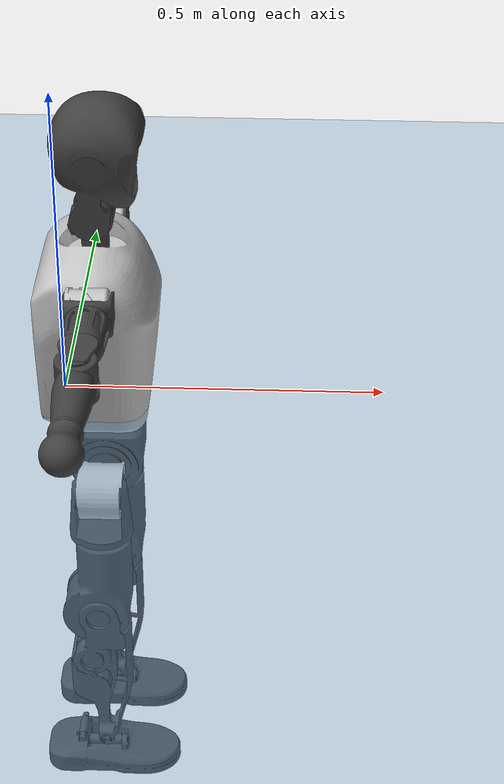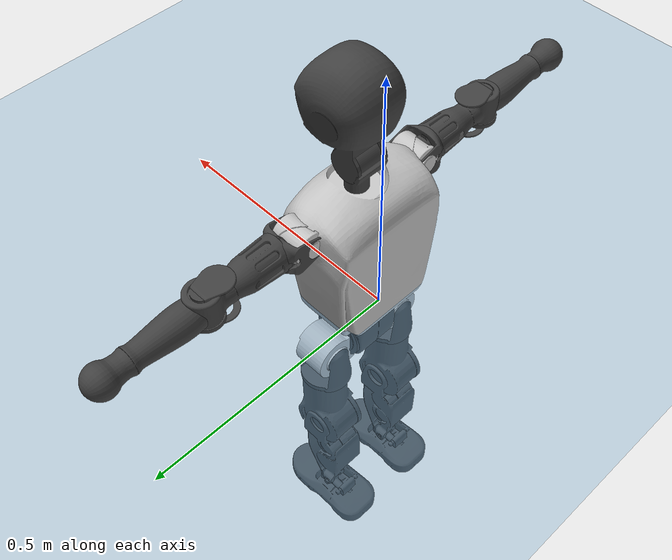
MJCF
<mujoco model="T1">
  <compiler angle="radian" assetdir="assets" balanceinertia="true" inertiafromgeom="false"/>

  <option timestep="0.005" density="1.2" viscosity="2e-05"/>

  <size nkey="1"/>

  <visual>
    <quality shadowsize="8192"/>
    <map shadowclip="0.5"/>
  </visual>

  <default>
    <default class="/">
      <joint armature="0.01" damping="0.01" frictionloss="0.1"/>
      <geom contype="0" conaffinity="0" group="1" solref="-1000 -80"/>
      <site size="0.01 0.005 0.005" group="5"/>
      <general forcelimited="true" biastype="affine" gainprm="25" biasprm="0 -25 -0.6"/>
      <default class="t1">
        <geom rgba="0.25 0.25 0.25 1"/>
        <default class="visual">
          <geom type="mesh" group="2"/>
        </default>
        <default class="collision">
          <geom group="3"/>
        </default>
        <default class="foot">
          <geom size="0.1115 0.05 0.015" type="box" condim="6" group="4" priority="1" solimp="0.015 1 0.015"/>
        </default>
        <default class="reward_collision_sphere">
          <geom group="5" rgba="1 0 0 1"/>
        </default>
      </default>
    </default>
  </default>

  <asset>
    <texture type="skybox" colorspace="auto" name="//unnamed_texture_0" builtin="gradient" rgb1="0.95 0.95 0.95" rgb2="0.95 0.95 0.95" width="100" height="600"/>
    <texture type="2d" colorspace="auto" name="texplane" builtin="checker" rgb1="0.345 0.575 0.748" rgb2="0.345 0.575 0.748" markrgb="1 1 1" width="512" height="512"/>
    <material name="MatPlane" class="/" texture="texplane" texuniform="true" texrepeat="2 2" specular="0.9"/>
    <mesh name="Trunk" class="/" file="Trunk.stl"/>
    <mesh name="H1" class="/" file="H1.stl"/>
    <mesh name="H2" class="/" file="H2.stl"/>
    <mesh name="AL1" class="/" file="AL1.stl"/>
    <mesh name="AL2" class="/" file="AL2.stl"/>
    <mesh name="AL3" class="/" file="AL3.stl"/>
    <mesh name="left_hand_link" class="/" file="left_hand_link.stl"/>
    <mesh name="AR1" class="/" file="AR1.stl"/>
    <mesh name="AR2" class="/" file="AR2.stl"/>
    <mesh name="AR3" class="/" file="AR3.stl"/>
    <mesh name="right_hand_link" class="/" file="right_hand_link.stl"/>
    <mesh name="Waist" class="/" file="Waist.stl"/>
    <mesh name="Hip_Pitch_Left" class="/" file="Hip_Pitch_Left.stl"/>
    <mesh name="Hip_Roll_Left" class="/" file="Hip_Roll_Left.stl"/>
    <mesh name="Hip_Yaw_Left" class="/" file="Hip_Yaw_Left.stl"/>
    <mesh name="Shank_Left" class="/" file="Shank_Left.stl"/>
    <mesh name="Ankle_Cross_Left" class="/" file="Ankle_Cross_Left.stl"/>
    <mesh name="left_foot_link" class="/" file="left_foot_link.stl"/>
    <mesh name="Hip_Pitch_Right" class="/" file="Hip_Pitch_Right.stl"/>
    <mesh name="Hip_Roll_Right" class="/" file="Hip_Roll_Right.stl"/>
    <mesh name="Hip_Yaw_Right" class="/" file="Hip_Yaw_Right.stl"/>
    <mesh name="Shank_Right" class="/" file="Shank_Right.stl"/>
    <mesh name="Ankle_Cross_Right" class="/" file="Ankle_Cross_Right.stl"/>
    <mesh name="right_foot_link" class="/" file="right_foot_link.stl"/>
  </asset>

  <worldbody>
    <geom name="floor" class="/" size="100 100 0.125" type="plane" group="0" material="MatPlane"/>
    <light name="toplight_shadow" class="/" pos="0 0 5" dir="0.0990148 0.0990148 -0.990148" type="directional" ambient="0.04 0.04 0.04" diffuse="0.55 0.55 0.55" specular="0.12 0.12 0.12"/>
    <light name="toplight_fill" class="/" pos="0 0 5" dir="0.0990148 0.0990148 -0.990148" type="directional" castshadow="false" ambient="0.04 0.04 0.04" diffuse="0.3 0.3 0.3" specular="0.08 0.08 0.08"/>
    <body name="trunk" childclass="t1" pos="0.000215826 -0.00243955 -0.000965307" quat="0.999999 -0.000394309 -0.00130311 0.000357005">
      <inertial pos="0.0536592 -0.00221307 0.107793" quat="0.999915 0.0126727 -0.00286029 -0.000845344" mass="9.66078" diaginertia="0.0957056 0.0242595 0.0648682"/>
      <joint name="//unnamed_joint_0" type="free" armature="0" damping="0" frictionloss="0"/>
      <geom name="//unnamed_geom_1" class="visual" rgba="0.76 0.76 0.76 1" mesh="Trunk"/>
      <geom name="//unnamed_geom_2" class="collision" size="0.0706463 0.094195 0.141293" pos="0.0600761 0 0.123399" type="box"/>
      <geom name="//unnamed_geom_3" class="reward_collision_sphere" size="0.108324" pos="0.0600761 0 0.102833"/>
      <geom name="//unnamed_geom_4" class="reward_collision_sphere" size="0.0141293" pos="0.0600761 0.0676816 0"/>
      <geom name="//unnamed_geom_5" class="reward_collision_sphere" size="0.0141293" pos="0.0600761 -0.0676816 0"/>
      <geom name="//unnamed_geom_6" class="reward_collision_sphere" size="0.0141293" pos="0.0600761 0.0851992 0.185099"/>
      <geom name="//unnamed_geom_7" class="reward_collision_sphere" size="0.0141293" pos="0.0600761 -0.0851992 0.185099"/>
      <site name="imu" pos="0.0141768 -0.000461706 -0.0141833" size="0.0094195"/>
      <camera name="track" pos="0 -1.59251 0" quat="0.707107 0.707107 0 0" mode="trackcom"/>
      <camera name="ego_camera" pos="0.122155 0 0.431898" quat="-0.5 -0.5 0.5 0.5"/>
      <body name="H1" pos="0.0592178 -0.000470373 0.247954" quat="1 -8.98277e-05 -2.02009e-05 -0.000279549">
        <inertial pos="-0.00175654 -0.000412019 0.0589706" quat="0.76457 -0.0129076 0.00093738 0.64441" mass="0.368236" diaginertia="0.000236121 7.26518e-05 0.00017144"/>
        <joint name="AAHead_yaw" pos="0 0 0" axis="0.00147942 -0.00155872 0.999998" stiffness="0.00826589" range="-1.51141 1.55767" armature="0.0103762" damping="0.00494355" frictionloss="0.104885"/>
        <geom name="//unnamed_geom_8" class="visual" mesh="H1"/>
        <body name="H2" pos="-0.00324872 -0.00118807 0.0631047" quat="1 -0.000886502 0.000260653 -1.76834e-05">
          <inertial pos="0.00975576 -0.00206028 0.0999011" quat="0.987271 0.107117 -0.0737188 -0.0915834" mass="0.535222" diaginertia="0.00199924 0.000597739 0.0019723"/>
          <joint name="Head_pitch" pos="0 0 0" axis="-0.00241756 -0.999988 -0.00416366" range="-1.23771 0.345134" armature="0.0107698" damping="0" frictionloss="0.0898217"/>
          <geom name="//unnamed_geom_9" class="visual" mesh="H2"/>
          <geom name="//unnamed_geom_10" class="collision" size="0.075356" pos="0.0100127 0 0.113116"/>
          <geom name="//unnamed_geom_11" class="reward_collision_sphere" size="0.0847755" pos="0.0200254 0 0.102833"/>
        </body>
      </body>
      <body name="AL1" pos="0.0584532 0.0837276 0.223251" quat="1 -0.000798171 0.000213348 0.000460385">
        <inertial pos="-0.00393469 0.0346469 0.000807604" quat="0.504869 0.495095 -0.504827 0.495113" mass="0.428838" diaginertia="0.00132936 0.000392001 0.000315597"/>
        <joint name="Left_Shoulder_Pitch" pos="0 0 0" axis="0.0164846 0.999857 0.00369141" range="-3.35681 1.25801" armature="0.00957272" damping="0" frictionloss="0.105955"/>
        <geom name="//unnamed_geom_12" class="visual" rgba="0.76 0.76 0.76 1" mesh="AL1"/>
        <body name="AL2" pos="-0.0011888 0.0401707 0.00114204" quat="1 -0.000368655 0.000226696 -0.000219507">
          <inertial pos="0.00207627 0.0324284 -0.0026111" quat="0.48571 0.511214 -0.490661 0.511857" mass="0.140155" diaginertia="0.000415625 0.000114152 0.000203298"/>
          <joint name="Left_Shoulder_Roll" pos="0 0 0" axis="-0.999997 0.00143055 -0.00189228" range="-1.52624 1.72961" armature="0.010368" damping="0.00283223" frictionloss="0.0927897"/>
          <geom name="//unnamed_geom_13" class="visual" mesh="AL2"/>
          <body name="AL3" pos="0.00215173 0.0481626 0.002801" quat="1 1.59026e-05 -4.66306e-05 -2.69554e-05">
            <inertial pos="0.00205942 0.0659376 0.00102679" quat="0.713336 0.700769 -0.00714284 0.00485004" mass="0.801274" diaginertia="0.0129119 0.00393097 0.000665161"/>
            <joint name="Left_Elbow_Pitch" pos="0 0 0" axis="-0.0120379 -0.999925 0.00217172" range="-2.30757 2.23153" armature="0.00986016" damping="0.013806" frictionloss="0.0961134"/>
            <geom name="//unnamed_geom_14" class="visual" mesh="AL3"/>
            <geom name="//unnamed_geom_15" class="collision" size="0.0282585 0.0706463" pos="0 0.0398127 0" quat="0.707105 0.707108 0 0" type="cylinder"/>
            <geom name="//unnamed_geom_16" class="reward_collision_sphere" size="0.0339102"/>
            <body name="left_hand_link" pos="0.000300539 0.117003 -0.00206307" quat="1 0.000365886 0.000427481 -0.000708862">
              <inertial pos="-0.00183233 0.0894262 -6.27524e-05" quat="0.708136 0.706074 -0.000551478 -0.00139987" mass="0.273052" diaginertia="0.00799492 0.00267476 0.000255375"/>
              <joint name="Left_Elbow_Yaw" pos="0 0 0" axis="-0.000620269 0.000193225 1" range="-2.43483 -0.0276125" armature="0.00983174" damping="0.022886" frictionloss="0.0945339"/>
              <geom name="//unnamed_geom_17" class="visual" mesh="left_hand_link"/>
              <geom name="//unnamed_geom_18" class="collision" size="0.0282585 0.0824206" pos="0 0.103513 0" quat="0.707105 0.707108 0 0" type="cylinder"/>
              <geom name="//unnamed_geom_19" class="reward_collision_sphere" size="0.0470975"/>
              <geom name="//unnamed_geom_20" class="reward_collision_sphere" size="0.0329683" pos="0 0.087588 0"/>
              <geom name="//unnamed_geom_21" class="reward_collision_sphere" size="0.0329683" pos="0 0.171195 0"/>
            </body>
          </body>
        </body>
      </body>
      <body name="AR1" pos="0.0587478 -0.0859276 0.224295" quat="0.999999 -0.000353171 0.00115957 0.000134818">
        <inertial pos="-0.00345098 -0.0370646 -0.000182353" quat="0.506432 0.487812 -0.51421 0.491075" mass="0.434215" diaginertia="0.00129287 0.000404879 0.000333211"/>
        <joint name="Right_Shoulder_Pitch" pos="0 0 0" axis="0.0134919 -0.999885 0.00690564" range="-1.2203 3.25943" armature="0.0105914" damping="0.00075956" frictionloss="0.0833823"/>
        <geom name="//unnamed_geom_22" class="visual" rgba="0.76 0.76 0.76 1" mesh="AR1"/>
        <body name="AR2" pos="0.00130378 -0.0334214 -0.0026397" quat="0.999999 -0.00112903 0.000437365 0.000157937">
          <inertial pos="0.00118538 -0.0313085 -0.000303095" quat="0.50542 0.491661 -0.518241 0.48399" mass="0.130177" diaginertia="0.000404222 0.000113798 0.000203171"/>
          <joint name="Right_Shoulder_Roll" pos="0 0 0" axis="-0.999974 0.00537282 0.00474606" stiffness="0.00261278" range="-1.70637 1.60016" armature="0.00948332" damping="0.0147103" frictionloss="0.0995306"/>
          <geom name="//unnamed_geom_23" class="visual" mesh="AR2"/>
          <body name="AR3" pos="0.00245983 -0.0471347 -0.00103696" quat="1 9.30534e-06 2.67725e-05 1.63693e-05">
            <inertial pos="-0.00123804 -0.0702713 -0.00163083" quat="0.71366 0.700433 0.00501331 -0.00768291" mass="0.858038" diaginertia="0.0129954 0.00411085 0.000740571"/>
            <joint name="Right_Elbow_Pitch" pos="0 0 0" axis="-0.00303036 0.999932 0.011287" stiffness="0.00564282" range="-2.31784 2.21548" armature="0.00826822" damping="0.00583628" frictionloss="0.107411"/>
            <geom name="//unnamed_geom_24" class="visual" mesh="AR3"/>
            <geom name="//unnamed_geom_25" class="collision" size="0.0282585 0.0706463" pos="0 -0.0398127 0" quat="0.707105 0.707108 0 0" type="cylinder"/>
            <geom name="//unnamed_geom_26" class="reward_collision_sphere" size="0.0339102"/>
            <body name="right_hand_link" pos="9.83636e-05 -0.116777 0.00169104" quat="0.999999 -0.000648932 0.00113548 0.000157841">
              <inertial pos="-0.00144332 -0.0896029 0.00298406" quat="0.706408 0.707805 0.000878249 -3.36532e-06" mass="0.267564" diaginertia="0.00807703 0.00249637 0.000239436"/>
              <joint name="Right_Elbow_Yaw" pos="0 0 0" axis="0.00135949 0.0101433 0.999948" range="0.0154099 2.49707" armature="0.0106781" damping="0" frictionloss="0.107485"/>
              <geom name="//unnamed_geom_27" class="visual" mesh="right_hand_link"/>
              <geom name="//unnamed_geom_28" class="collision" size="0.0282585 0.0824206" pos="0 -0.103513 0" quat="0.707105 0.707108 0 0" type="cylinder"/>
              <geom name="//unnamed_geom_29" class="reward_collision_sphere" size="0.0470975"/>
              <geom name="//unnamed_geom_30" class="reward_collision_sphere" size="0.0329683" pos="0 -0.087588 0"/>
              <geom name="//unnamed_geom_31" class="reward_collision_sphere" size="0.0329683" pos="0 -0.171195 0"/>
            </body>
          </body>
        </body>
      </body>
      <body name="Waist" pos="0.0629615 -0.00411615 -0.116951" quat="1 0.000150154 0.000150151 -0.000116745">
        <inertial pos="0.000266676 -0.00087734 0.00697271" quat="0.983761 -0.00855617 -0.179199 -0.00543243" mass="2.12963" diaginertia="0.00526337 0.00169182 0.00533642"/>
        <joint name="Waist" pos="0 0 0" axis="0.00356119 0.0104193 0.999939" range="-1.58009 1.52311" armature="0.009141" damping="0.0222539" frictionloss="0.10591"/>
        <geom name="//unnamed_geom_32" class="visual" mesh="Waist"/>
        <body name="Hip_Pitch_Left" pos="0.000457066 0.0840285 -5.71179e-05" quat="1 -0.000371093 -0.000629683 0.000556567">
          <inertial pos="0.00132624 -0.00866629 -0.0178043" quat="0.975173 0.220958 0.0145347 0.0017488" mass="0.866218" diaginertia="0.00181044 0.000473433 0.00146018"/>
          <joint name="Left_Hip_Pitch" pos="0 0 0" axis="0.00602418 0.999975 -0.00365975" range="-1.79346 1.60608" armature="0.0105125" damping="0" frictionloss="0.0955904"/>
          <geom name="//unnamed_geom_33" class="visual" rgba="0.76 0.76 0.76 1" mesh="Hip_Pitch_Left"/>
          <body name="Hip_Roll_Left" pos="-7.82908e-05 0.000515268 -0.0187456" quat="1 -2.72293e-05 -0.00011106 -0.00079544">
            <inertial pos="-0.00162234 0.000267403 -0.0556026" quat="0.709761 -0.00251101 -0.00416575 0.704426" mass="0.316141" diaginertia="0.00176862 0.000472003 0.000579578"/>
            <joint name="Left_Hip_Roll" pos="0 0 0" axis="-0.999977 -0.00171777 -0.00657471" stiffness="0.00676513" range="-1.52891 0.198654" armature="0.00831989" damping="0.0162929" frictionloss="0.095814"/>
            <geom name="//unnamed_geom_34" class="visual" mesh="Hip_Roll_Left"/>
            <geom name="//unnamed_geom_35" class="reward_collision_sphere" size="0.0518073"/>
            <body name="Hip_Yaw_Left" pos="0.00319357 -0.00114976 -0.0874335" quat="1 0.000422997 -5.77981e-05 0.000369792">
              <inertial pos="-0.00795849 -0.000202751 -0.0915808" quat="0.695151 -0.0422301 -0.035599 0.716739" mass="1.71673" diaginertia="0.0260309 0.0079501 0.00289948"/>
              <joint name="Left_Hip_Yaw" pos="0 0 0" axis="0.000198029 0.00100867 -0.999999" range="-1.06731 1.01651" armature="0.00949711" damping="0.0199028" frictionloss="0.0892622"/>
              <geom name="//unnamed_geom_36" class="visual" mesh="Hip_Yaw_Left"/>
              <geom name="//unnamed_geom_37" class="collision" size="0.0470975 0.075356" type="cylinder"/>
              <body name="Shank_Left" pos="-0.0140001 -0.002539 -0.14059" quat="1 2.85628e-06 -4.29885e-06 1.34365e-05">
                <inertial pos="-0.00742964 -0.00210851 -0.12677" quat="0.997688 -0.0076936 -0.0143781 0.0659821" mass="1.54385" diaginertia="0.0361928 0.0114411 0.00215052"/>
                <joint name="Left_Knee_Pitch" pos="0 0 0" axis="0.00112409 0.999999 -0.000217957" stiffness="0.000328116" range="0.0249189 2.28963" armature="0.0104773" damping="0" frictionloss="0.0930999"/>
                <geom name="//unnamed_geom_38" class="visual" mesh="Shank_Left"/>
                <geom name="//unnamed_geom_39" class="collision" size="0.0470975 0.0706463" pos="0 0 -0.123399" type="cylinder"/>
                <geom name="//unnamed_geom_40" class="reward_collision_sphere" size="0.0612268"/>
                <body name="Ankle_Cross_Left" pos="0.00159969 0.00234085 -0.291128" quat="0.999999 0.000748032 -0.000432412 0.000748327">
                  <inertial pos="-0.00589579 -0.00119679 -0.00729463" quat="0.443541 0.558023 0.539818 0.447748" mass="0.0611524" diaginertia="2.92738e-05 8.52317e-06 1.35849e-05"/>
                  <joint name="Left_Ankle_Pitch" pos="0 0 0" axis="-0.0025485 0.99992 0.0123602" range="-0.879612 0.368673" armature="0.00870324" damping="0.012188" frictionloss="0.0893107"/>
                  <geom name="//unnamed_geom_41" class="visual" mesh="Ankle_Cross_Left"/>
                  <body name="left_foot_link" pos="-0.00270709 -0.00211243 -0.0136384" quat="1 1.27849e-06 -0.000236333 5.34972e-05">
                    <inertial pos="0.00203717 0.00131782 -0.00804454" quat="-0.00102701 0.621554 -0.000439681 0.78337" mass="0.563463" diaginertia="0.00271149 0.00075603 0.00245636"/>
                    <joint name="Left_Ankle_Roll" pos="0 0 0" axis="-0.99998 0.00448176 0.00448707" stiffness="0.00422214" range="-0.447293 0.443376" armature="0.00819366" damping="0" frictionloss="0.0929248"/>
                    <geom name="//unnamed_geom_42" class="visual" mesh="left_foot_link"/>
                    <geom name="left_foot" class="foot" size="0.0817654 0.0437962 0.0146891" pos="0.0100127 0 -0.0154249"/>
                    <geom name="//unnamed_geom_44" class="reward_collision_sphere" size="0.0489814" pos="0.0100127 0 -0.0154249"/>
                    <geom name="//unnamed_geom_45" class="reward_collision_sphere" size="0.0282585" pos="0.0951205 -0.0183138 -0.0154249"/>
                    <geom name="//unnamed_geom_46" class="reward_collision_sphere" size="0.0282585" pos="-0.0700888 -0.0183138 -0.0154249"/>
                    <site name="left_foot" class="foot" pos="0.0100127 0 -0.0154249" size="0.0094195"/>
                  </body>
                </body>
              </body>
            </body>
          </body>
        </body>
        <body name="Hip_Pitch_Right" pos="-0.00303698 -0.0816433 -0.00228589" quat="1 0.000715742 0.000137125 2.10201e-05">
          <inertial pos="0.00103115 0.00515036 -0.0181817" quat="0.974704 -0.222187 0.0184482 -0.0156374" mass="0.860524" diaginertia="0.00176887 0.00045188 0.00137847"/>
          <joint name="Right_Hip_Pitch" pos="0 0 0" axis="0.00228124 -0.999965 0.00803504" range="-1.62943 1.80566" armature="0.00833637" damping="0.00393207" frictionloss="0.1023"/>
          <geom name="//unnamed_geom_47" class="visual" rgba="0.76 0.76 0.76 1" mesh="Hip_Pitch_Right"/>
          <body name="Hip_Roll_Right" pos="-0.000620604 -0.00260213 -0.0223309" quat="1 -0.000112125 -0.000145695 7.37344e-05">
            <inertial pos="-0.00098312 0.00139494 -0.0568928" quat="0.706458 -0.0164853 -0.00695001 0.707529" mass="0.333806" diaginertia="0.00183142 0.00049386 0.000600249"/>
            <joint name="Right_Hip_Roll" pos="0 0 0" axis="-1 0.000233151 -0.000850164" range="-0.183154 1.56336" armature="0.0104037" damping="0.00419786" frictionloss="0.0896048"/>
            <geom name="//unnamed_geom_48" class="visual" mesh="Hip_Roll_Right"/>
            <geom name="//unnamed_geom_49" class="reward_collision_sphere" size="0.0518073"/>
            <body name="Hip_Yaw_Right" pos="7.09195e-05 -0.00357809 -0.0846643" quat="1 0.000189719 -0.000375043 0.000286098">
              <inertial pos="-0.00428475 -0.00273387 -0.0915869" quat="0.714379 -0.0314819 -0.0334838 0.698248" mass="1.83865" diaginertia="0.0269708 0.00812962 0.00298592"/>
              <joint name="Right_Hip_Yaw" pos="0 0 0" axis="0.00201564 0.00086264 -0.999998" range="-1.00306 0.948335" armature="0.00893258" damping="0.0218554" frictionloss="0.103772"/>
              <geom name="//unnamed_geom_50" class="visual" mesh="Hip_Yaw_Right"/>
              <geom name="//unnamed_geom_51" class="collision" size="0.0470975 0.075356" type="cylinder"/>
              <body name="Shank_Right" pos="-0.0105385 0.0014211 -0.137488" quat="0.999999 -0.000221486 0.00100098 -0.00045887">
                <inertial pos="-0.00587924 0.00293193 -0.124456" quat="0.998633 0.00224091 -0.0333324 -0.0401957" mass="1.443" diaginertia="0.0341517 0.0113171 0.00228793"/>
                <joint name="Right_Knee_Pitch" pos="0 0 0" axis="0.00503566 -0.999969 -0.00606548" range="-2.2864 -0.0596702" armature="0.00974358" damping="0.0207838" frictionloss="0.0865975"/>
                <geom name="//unnamed_geom_52" class="visual" mesh="Shank_Right"/>
                <geom name="//unnamed_geom_53" class="collision" size="0.0470975 0.0706463" pos="0 0 -0.123399" type="cylinder"/>
                <geom name="//unnamed_geom_54" class="reward_collision_sphere" size="0.0612268"/>
                <body name="Ankle_Cross_Right" pos="0.00337778 -0.00304057 -0.287387" quat="1 0.000350012 0.000223003 -0.000297664">
                  <inertial pos="-0.00528888 -0.000861156 -0.00552504" quat="0.444292 0.545847 0.546466 0.453905" mass="0.0604435" diaginertia="2.93651e-05 8.23451e-06 1.26163e-05"/>
                  <joint name="Right_Ankle_Pitch" pos="0 0 0" axis="0.00390493 -0.999986 -0.00351853" range="-0.401725 0.851885" armature="0.00898899" damping="0.00782247" frictionloss="0.0982109"/>
                  <geom name="//unnamed_geom_55" class="visual" mesh="Ankle_Cross_Right"/>
                  <body name="right_foot_link" pos="-7.46947e-05 -0.00281138 -0.0143954" quat="1 1.39162e-05 5.20665e-06 1.63023e-05">
                    <inertial pos="0.0009955 0.00117642 -0.0120054" quat="0.000766714 0.620136 0.000983048 0.784493" mass="0.565016" diaginertia="0.00268628 0.000766625 0.00243186"/>
                    <joint name="Right_Ankle_Roll" pos="0 0 0" axis="-0.999933 -0.0055441 -0.0101415" range="-0.419627 0.430978" armature="0.010667" damping="0.0114842" frictionloss="0.0808046"/>
                    <geom name="//unnamed_geom_56" class="visual" mesh="right_foot_link"/>
                    <geom name="right_foot" class="foot" size="0.0688 0.0420227 0.0141394" pos="0.0100127 0 -0.0154249"/>
                    <geom name="//unnamed_geom_58" class="reward_collision_sphere" size="0.037678"/>
                    <geom name="//unnamed_geom_59" class="reward_collision_sphere" size="0.0282585" pos="0.0100127 0 -0.0154249"/>
                    <geom name="//unnamed_geom_60" class="reward_collision_sphere" size="0.0282585" pos="0.0951205 0.0183138 -0.0154249"/>
                    <geom name="//unnamed_geom_61" class="reward_collision_sphere" size="0.0282585" pos="-0.0700888 0.0183138 -0.0154249"/>
                    <site name="right_foot" class="foot" pos="0.0100127 0 -0.0154249" size="0.0094195"/>
                  </body>
                </body>
              </body>
            </body>
          </body>
        </body>
      </body>
    </body>
  </worldbody>

  <contact>
    <pair class="/" geom1="floor" geom2="left_foot" name="//unnamed_contact_0"/>
    <pair class="/" geom1="floor" geom2="right_foot" name="//unnamed_contact_1"/>
  </contact>

  <actuator>
    <general name="AAHead_yaw" class="/" joint="AAHead_yaw" forcerange="-5.94644 5.94644" gainprm="22.6641" biasprm="0 -22.6641 -0.528089"/>
    <general name="Head_pitch" class="/" joint="Head_pitch" forcerange="-7.29533 7.29533" gainprm="22.6641" biasprm="0 -22.6641 -0.528089"/>
    <general name="Left_Shoulder_Pitch" class="/" joint="Left_Shoulder_Pitch" forcerange="-17.2585 17.2585" gainprm="22.6641" biasprm="0 -22.6641 -0.528089"/>
    <general name="Left_Shoulder_Roll" class="/" joint="Left_Shoulder_Roll" forcerange="-18.4606 18.4606" gainprm="22.6641" biasprm="0 -22.6641 -0.528089"/>
    <general name="Left_Elbow_Pitch" class="/" joint="Left_Elbow_Pitch" forcerange="-17.5986 17.5986" gainprm="22.6641" biasprm="0 -22.6641 -0.528089"/>
    <general name="Left_Elbow_Yaw" class="/" joint="Left_Elbow_Yaw" forcerange="-16.8752 16.8752" gainprm="22.6641" biasprm="0 -22.6641 -0.528089"/>
    <general name="Right_Shoulder_Pitch" class="/" joint="Right_Shoulder_Pitch" forcerange="-17.0037 17.0037" gainprm="22.6641" biasprm="0 -22.6641 -0.528089"/>
    <general name="Right_Shoulder_Roll" class="/" joint="Right_Shoulder_Roll" forcerange="-16.1273 16.1273" gainprm="22.6641" biasprm="0 -22.6641 -0.528089"/>
    <general name="Right_Elbow_Pitch" class="/" joint="Right_Elbow_Pitch" forcerange="-17.1332 17.1332" gainprm="22.6641" biasprm="0 -22.6641 -0.528089"/>
    <general name="Right_Elbow_Yaw" class="/" joint="Right_Elbow_Yaw" forcerange="-16.7944 16.7944" gainprm="22.6641" biasprm="0 -22.6641 -0.528089"/>
    <general name="Waist" class="/" joint="Waist" forcerange="-25.89 25.89" gainprm="22.6641" biasprm="0 -22.6641 -0.528089"/>
    <general name="Left_Hip_Pitch" class="/" joint="Left_Hip_Pitch" forcerange="-40.5895 40.5895" gainprm="22.6641" biasprm="0 -22.6641 -0.528089"/>
    <general name="Left_Hip_Roll" class="/" joint="Left_Hip_Roll" forcerange="-28.4439 28.4439" gainprm="22.6641" biasprm="0 -22.6641 -0.528089"/>
    <general name="Left_Hip_Yaw" class="/" joint="Left_Hip_Yaw" forcerange="-28.5356 28.5356" gainprm="22.6641" biasprm="0 -22.6641 -0.528089"/>
    <general name="Left_Knee_Pitch" class="/" joint="Left_Knee_Pitch" forcerange="-50.7004 50.7004" gainprm="22.6641" biasprm="0 -22.6641 -0.528089"/>
    <general name="Left_Ankle_Pitch" class="/" joint="Left_Ankle_Pitch" forcerange="-19.8768 19.8768" gainprm="22.6641" biasprm="0 -22.6641 -0.528089"/>
    <general name="Left_Ankle_Roll" class="/" joint="Left_Ankle_Roll" forcerange="-13.6095 13.6095" gainprm="22.6641" biasprm="0 -22.6641 -0.528089"/>
    <general name="Right_Hip_Pitch" class="/" joint="Right_Hip_Pitch" forcerange="-42.2084 42.2084" gainprm="22.6641" biasprm="0 -22.6641 -0.528089"/>
    <general name="Right_Hip_Roll" class="/" joint="Right_Hip_Roll" forcerange="-25.4144 25.4144" gainprm="22.6641" biasprm="0 -22.6641 -0.528089"/>
    <general name="Right_Hip_Yaw" class="/" joint="Right_Hip_Yaw" forcerange="-30.42 30.42" gainprm="22.6641" biasprm="0 -22.6641 -0.528089"/>
    <general name="Right_Knee_Pitch" class="/" joint="Right_Knee_Pitch" forcerange="-57.6092 57.6092" gainprm="22.6641" biasprm="0 -22.6641 -0.528089"/>
    <general name="Right_Ankle_Pitch" class="/" joint="Right_Ankle_Pitch" forcerange="-18.6683 18.6683" gainprm="22.6641" biasprm="0 -22.6641 -0.528089"/>
    <general name="Right_Ankle_Roll" class="/" joint="Right_Ankle_Roll" forcerange="-13.8428 13.8428" gainprm="22.6641" biasprm="0 -22.6641 -0.528089"/>
  </actuator>

  <sensor>
    <gyro site="imu" name="imu_angular_velocity"/>
    <velocimeter site="imu" name="imu_linear_velocity"/>
    <framelinvel objtype="site" objname="left_foot" name="left_foot_global_linear_velocity"/>
    <framelinvel objtype="site" objname="right_foot" name="right_foot_global_linear_velocity"/>
  </sensor>

  <keyframe>
    <key name="home" qpos="0 0 0.6385 1 0 0 0 0 0 0 1.4 0 -0.4 0 -1.4 0 0.4 0 -0.4 0 0 0.8 -0.4 0 0.4 0 0 -0.8 0.4 0"/>
  </keyframe>
</mujoco>
